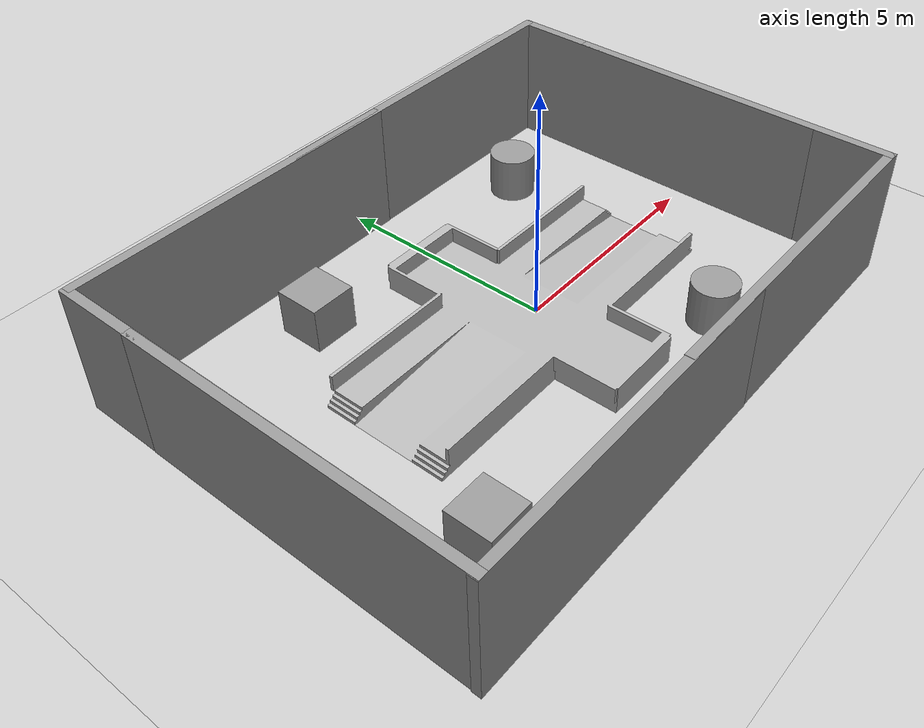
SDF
<sdf version="1.6">
 <world name="default">
  <light name="sun" type="directional">
   <pose>0 0 10 0 -0 0</pose>
   <diffuse>0.8 0.8 0.8 1</diffuse>
   <specular>0.2 0.2 0.2 1</specular>
   <attenuation>
    <range>1000</range>
    <constant>0.9</constant>
    <linear>0.01</linear>
    <quadratic>0.001</quadratic>
   </attenuation>
   <direction>-0.5 0.1 -0.9</direction>
  </light>
  <model name="ground_plane">
   <static>1</static>
   <link name="link">
    <collision name="collision">
     <geometry><plane><normal>0 0 1</normal><size>100 100</size></plane></geometry>
     <surface>
      <contact><collide_bitmask>65535</collide_bitmask></contact>
      <friction><ode><mu>100</mu><mu2>50</mu2></ode></friction>
     </surface>
    </collision>
    <visual name="visual">
     <cast_shadows>0</cast_shadows>
     <geometry><plane><normal>0 0 1</normal><size>100 100</size></plane></geometry>
     <material>
      <script><uri>file://media/materials/scripts/gazebo.material</uri><name>Gazebo/Grey</name></script>
     </material>
    </visual>
   </link>
  </model>
  <gravity>0 0 -9.8</gravity>
  <magnetic_field>6e-06 2.3e-05 -4.2e-05</magnetic_field>
  <atmosphere type="adiabatic"/>
  <physics name="default_physics" default="0" type="ode">
   <max_step_size>0.001</max_step_size>
   <real_time_factor>1</real_time_factor>
   <real_time_update_rate>1000</real_time_update_rate>
  </physics>
  <scene><ambient>0.4 0.4 0.4 1</ambient><background>0.7 0.7 0.7 1</background><shadows>1</shadows></scene>
  <audio><device>default</device></audio>
  <spherical_coordinates>
   <surface_model>EARTH_WGS84</surface_model>
   <latitude_deg>0</latitude_deg>
   <longitude_deg>0</longitude_deg>
   <elevation>0</elevation>
   <heading_deg>0</heading_deg>
  </spherical_coordinates>
  <model name="environment">
   <static>1</static>
   <link name="base">
    <visual name="visual">
     <geometry>
      <mesh><uri>model://environment/meshes/environment.stl</uri><scale>0.7 0.7 0.7</scale></mesh>
     </geometry>
    </visual>
    <collision name="environment_collision">
     <geometry>
      <mesh><uri>model://environment/meshes/environment.stl</uri><scale>0.7 0.7 0.7</scale></mesh>
     </geometry>
     <surface><friction><ode><mu>1</mu><mu2>1</mu2></ode></friction></surface>
    </collision>
   </link>
   <pose>-4.12972 1.30727 -1.04972 1.57 -0 0</pose>
  </model>
  <model name="grey_wall">
   <static>1</static>
   <link name="link">
    <pose>0 0 1.4 0 -0 0</pose>
    <collision name="collision"><geometry><box><size>7.5 0.2 2.8</size></box></geometry></collision>
    <visual name="visual">
     <cast_shadows>0</cast_shadows>
     <geometry><box><size>7.5 0.2 2.8</size></box></geometry>
     <material>
      <script>
       <uri>model://grey_wall/materials/scripts</uri>
       <uri>model://grey_wall/materials/textures</uri>
       <name>vrc/grey_wall</name>
      </script>
     </material>
    </visual>
   </link>
   <pose>-3.44868 -4.50891 -0.00603 0 -0 0</pose>
  </model>
  <model name="grey_wall_clone">
   <static>1</static>
   <link name="link">
    <pose>0 0 1.4 0 -0 0</pose>
    <collision name="collision"><geometry><box><size>7.5 0.2 2.8</size></box></geometry></collision>
    <visual name="visual">
     <cast_shadows>0</cast_shadows>
     <geometry><box><size>7.5 0.2 2.8</size></box></geometry>
     <material>
      <script>
       <uri>model://grey_wall/materials/scripts</uri>
       <uri>model://grey_wall/materials/textures</uri>
       <name>vrc/grey_wall</name>
      </script>
     </material>
    </visual>
   </link>
   <pose>1.82885 -4.49905 0 0 -0 0</pose>
  </model>
  <model name="grey_wall_clone_0">
   <static>1</static>
   <link name="link">
    <pose>0 0 1.4 0 -0 0</pose>
    <collision name="collision"><geometry><box><size>7.5 0.2 2.8</size></box></geometry></collision>
    <visual name="visual">
     <cast_shadows>0</cast_shadows>
     <geometry><box><size>7.5 0.2 2.8</size></box></geometry>
     <material>
      <script>
       <uri>model://grey_wall/materials/scripts</uri>
       <uri>model://grey_wall/materials/textures</uri>
       <name>vrc/grey_wall</name>
      </script>
     </material>
    </visual>
   </link>
   <pose>-3.35853 4.52347 0 0 -0 0</pose>
  </model>
  <model name="grey_wall_clone_1">
   <static>1</static>
   <link name="link">
    <pose>0 0 1.4 0 -0 0</pose>
    <collision name="collision"><geometry><box><size>7.5 0.2 2.8</size></box></geometry></collision>
    <visual name="visual">
     <cast_shadows>0</cast_shadows>
     <geometry><box><size>7.5 0.2 2.8</size></box></geometry>
     <material>
      <script>
       <uri>model://grey_wall/materials/scripts</uri>
       <uri>model://grey_wall/materials/textures</uri>
       <name>vrc/grey_wall</name>
      </script>
     </material>
    </visual>
   </link>
   <pose>1.80279 4.53481 0 0 -0 0</pose>
  </model>
  <model name="grey_wall_clone_0_clone">
   <static>1</static>
   <link name="link">
    <pose>0 0 1.4 0 -0 0</pose>
    <collision name="collision"><geometry><box><size>7.5 0.2 2.8</size></box></geometry></collision>
    <visual name="visual">
     <cast_shadows>0</cast_shadows>
     <geometry><box><size>7.5 0.2 2.8</size></box></geometry>
     <material>
      <script>
       <uri>model://grey_wall/materials/scripts</uri>
       <uri>model://grey_wall/materials/textures</uri>
       <name>vrc/grey_wall</name>
      </script>
     </material>
    </visual>
   </link>
   <pose>-7.08761 -0.856758 0 0 0 -1.57</pose>
  </model>
  <model name="grey_wall_clone_0_clone_0">
   <static>1</static>
   <link name="link">
    <pose>0 0 1.4 0 -0 0</pose>
    <collision name="collision"><geometry><box><size>7.5 0.2 2.8</size></box></geometry></collision>
    <visual name="visual">
     <cast_shadows>0</cast_shadows>
     <geometry><box><size>7.5 0.2 2.8</size></box></geometry>
     <material>
      <script>
       <uri>model://grey_wall/materials/scripts</uri>
       <uri>model://grey_wall/materials/textures</uri>
       <name>vrc/grey_wall</name>
      </script>
     </material>
    </visual>
   </link>
   <pose>-7.08276 0.866253 0 0 -0 1.57097</pose>
  </model>
  <model name="grey_wall_clone_0_clone_clone">
   <static>1</static>
   <link name="link">
    <pose>0 0 1.4 0 -0 0</pose>
    <collision name="collision"><geometry><box><size>7.5 0.2 2.8</size></box></geometry></collision>
    <visual name="visual">
     <cast_shadows>0</cast_shadows>
     <geometry><box><size>7.5 0.2 2.8</size></box></geometry>
     <material>
      <script>
       <uri>model://grey_wall/materials/scripts</uri>
       <uri>model://grey_wall/materials/textures</uri>
       <name>vrc/grey_wall</name>
      </script>
     </material>
    </visual>
   </link>
   <pose>5.47365 -0.839819 0 0 0 -1.57</pose>
  </model>
  <model name="grey_wall_clone_0_clone_0_clone">
   <static>1</static>
   <link name="link">
    <pose>0 0 1.4 0 -0 0</pose>
    <collision name="collision"><geometry><box><size>7.5 0.2 2.8</size></box></geometry></collision>
    <visual name="visual">
     <cast_shadows>0</cast_shadows>
     <geometry><box><size>7.5 0.2 2.8</size></box></geometry>
     <material>
      <script>
       <uri>model://grey_wall/materials/scripts</uri>
       <uri>model://grey_wall/materials/textures</uri>
       <name>vrc/grey_wall</name>
      </script>
     </material>
    </visual>
   </link>
   <pose>5.47044 0.858053 0 0 -0 1.57097</pose>
  </model>
  <model name="unit_cylinder_0">
   <pose>3.07897 3.07627 0.499992 -3e-06 3e-06 0</pose>
   <link name="link">
    <inertial>
     <mass>1</mass>
     <inertia><ixx>0.145833</ixx><ixy>0</ixy><ixz>0</ixz><iyy>0.145833</iyy><iyz>0</iyz><izz>0.125</izz></inertia>
    </inertial>
    <collision name="collision">
     <geometry><cylinder><radius>0.5</radius><length>1</length></cylinder></geometry>
    </collision>
    <visual name="visual">
     <geometry><cylinder><radius>0.5</radius><length>1</length></cylinder></geometry>
     <material>
      <script><name>Gazebo/Grey</name><uri>file://media/materials/scripts/gazebo.material</uri></script>
     </material>
    </visual>
   </link>
  </model>
  <model name="unit_cylinder_0_clone">
   <pose>1.96864 -2.89417 0.499992 -3e-06 3e-06 0</pose>
   <link name="link">
    <inertial>
     <mass>1</mass>
     <inertia><ixx>0.145833</ixx><ixy>0</ixy><ixz>0</ixz><iyy>0.145833</iyy><iyz>0</iyz><izz>0.125</izz></inertia>
    </inertial>
    <collision name="collision">
     <geometry><cylinder><radius>0.5</radius><length>1</length></cylinder></geometry>
    </collision>
    <visual name="visual">
     <geometry><cylinder><radius>0.5</radius><length>1</length></cylinder></geometry>
     <material>
      <script><name>Gazebo/Grey</name><uri>file://media/materials/scripts/gazebo.material</uri></script>
     </material>
    </visual>
   </link>
  </model>
  <model name="unit_box_1">
   <pose>-5.07274 -2.96555 0.5 0 -0 0</pose>
   <link name="link">
    <inertial>
     <mass>1</mass>
     <inertia>
      <ixx>0.166667</ixx>
      <ixy>0</ixy>
      <ixz>0</ixz>
      <iyy>0.166667</iyy>
      <iyz>0</iyz>
      <izz>0.166667</izz>
     </inertia>
    </inertial>
    <collision name="collision"><geometry><box><size>1 1 1</size></box></geometry></collision>
    <visual name="visual">
     <geometry><box><size>1 1 1</size></box></geometry>
     <material>
      <script><name>Gazebo/Grey</name><uri>file://media/materials/scripts/gazebo.material</uri></script>
     </material>
    </visual>
   </link>
  </model>
  <model name="unit_box_1_clone">
   <pose>-3.0866 3.00682 0.5 -0 -0 -0</pose>
   <link name="link">
    <inertial>
     <mass>1</mass>
     <inertia>
      <ixx>0.166667</ixx>
      <ixy>0</ixy>
      <ixz>0</ixz>
      <iyy>0.166667</iyy>
      <iyz>0</iyz>
      <izz>0.166667</izz>
     </inertia>
    </inertial>
    <collision name="collision"><geometry><box><size>1 1 1</size></box></geometry></collision>
    <visual name="visual">
     <geometry><box><size>1 1 1</size></box></geometry>
     <material>
      <script><name>Gazebo/Grey</name><uri>file://media/materials/scripts/gazebo.material</uri></script>
     </material>
    </visual>
   </link>
  </model>
 </world>
</sdf>
